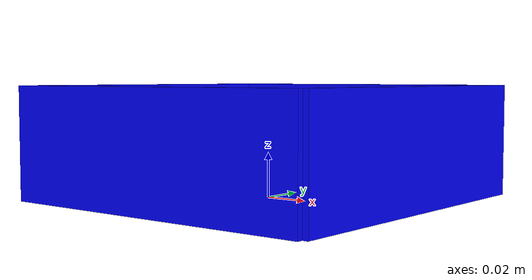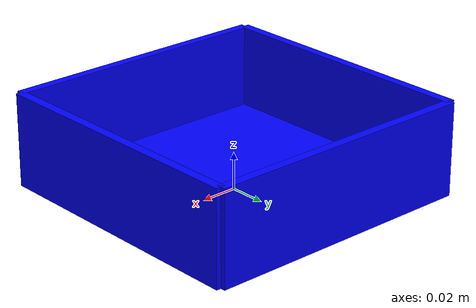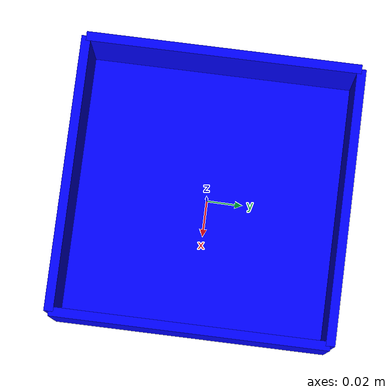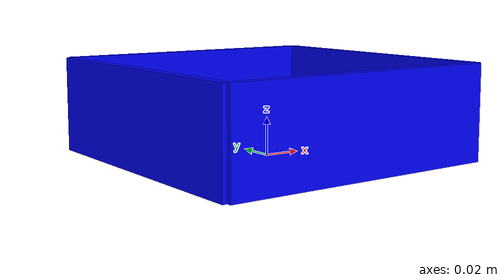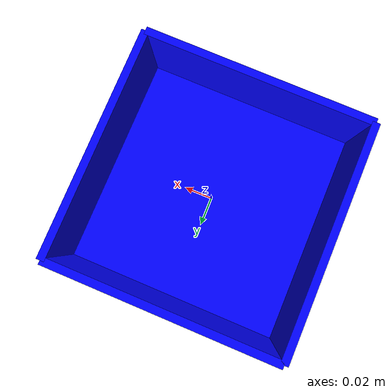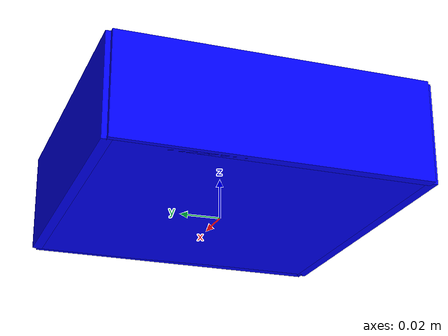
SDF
<?xml version="1.0"?>
<sdf version="1.7">
  <model name="case">
    <static>true</static>
    <link name="base_link">
      <collision name="base_collision">
        <pose>0 0 0.0025 0 0 0</pose>
        <geometry><box><size>0.15 0.15 0.005</size></box></geometry>
      </collision>
      <visual name="base_visual">
        <pose>0 0 0.0025 0 0 0</pose>
        <geometry><box><size>0.15 0.15 0.005</size></box></geometry>
        <material><ambient>0 0 1 1</ambient><diffuse>0 0 1 1</diffuse></material>
      </visual>
    </link>
    <link name="walls">
      <visual name="front"><pose>0 -0.075 0.025 0 0 0</pose><geometry><box><size>0.15 0.005 0.05</size></box></geometry><material><ambient>0 0 1 1</ambient><diffuse>0 0 1 1</diffuse></material></visual>
      <visual name="back"><pose>0 0.075 0.025 0 0 0</pose><geometry><box><size>0.15 0.005 0.05</size></box></geometry><material><ambient>0 0 1 1</ambient><diffuse>0 0 1 1</diffuse></material></visual>
      <visual name="left"><pose>-0.075 0 0.025 0 0 0</pose><geometry><box><size>0.005 0.15 0.05</size></box></geometry><material><ambient>0 0 1 1</ambient><diffuse>0 0 1 1</diffuse></material></visual>
      <visual name="right"><pose>0.075 0 0.025 0 0 0</pose><geometry><box><size>0.005 0.15 0.05</size></box></geometry><material><ambient>0 0 1 1</ambient><diffuse>0 0 1 1</diffuse></material></visual>
      <collision name="front"><pose>0 -0.075 0.025 0 0 0</pose><geometry><box><size>0.15 0.005 0.05</size></box></geometry></collision>
      <collision name="back"><pose>0 0.075 0.025 0 0 0</pose><geometry><box><size>0.15 0.005 0.05</size></box></geometry></collision>
      <collision name="left"><pose>-0.075 0 0.025 0 0 0</pose><geometry><box><size>0.005 0.15 0.05</size></box></geometry></collision>
      <collision name="right"><pose>0.075 0 0.025 0 0 0</pose><geometry><box><size>0.005 0.15 0.05</size></box></geometry></collision>
    </link>
    <joint name="walls_fixed" type="fixed">
      <parent>base_link</parent>
      <child>walls</child>
    </joint>
  </model>
</sdf>
